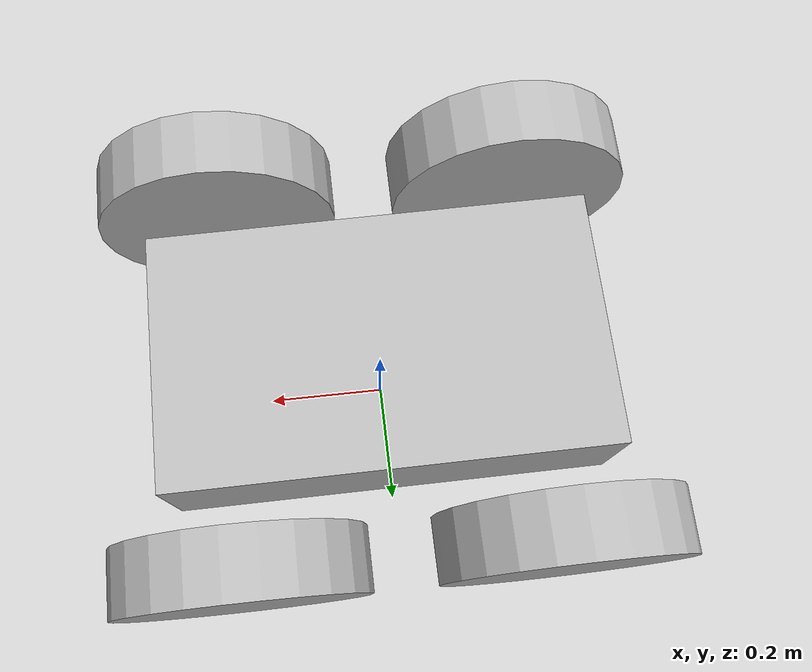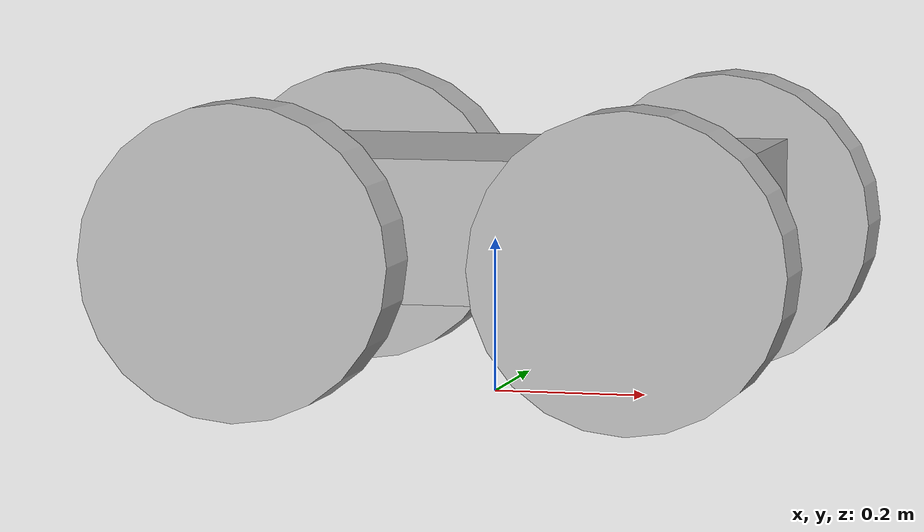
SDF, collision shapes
<?xml version='1.0'?>
<sdf version='1.4'>
  <model name="Saturne">
	<static>false</static>

	<link name='chassis'>
        <pose>0 0 0.2275 0 0 0</pose>

        <collision name='collision'>
          <geometry>
            <box>
              <size>.70 .405 .185</size>
            </box>
          </geometry>
        </collision>

        <visual name='visual'>
          	<pose> 0.35 0 0 0 0 0</pose>

          	<geometry>
	          	<mesh>
	          		<scale>1 1 1</scale>
	        	</mesh>
          	</geometry>
        </visual>
	</link>

	<link name="front_left_wheel">
        <pose>0.25 -0.3175 0.2 0 1.5707 1.5707</pose>
        <collision name="collision">
          <geometry>
            <cylinder>
              <radius>.2</radius>
              <length>.105</length>
            </cylinder>
          </geometry>
        </collision>

        <visual name='visual'>
	        <pose> 0 0 0 1.5707 0 0</pose>

          	<geometry>
	          	<mesh>
	          		<uri>model://robot_saturne/meshes/first_wheel.dae</uri>
	          		<scale>0.1 0.1 0.1</scale>
	        	</mesh>
          	</geometry>
        </visual>
	</link>

	<link name="rear_left_wheel">
        <pose>-0.25 -0.3175 0.2 0 1.5707 1.5707</pose>
        <collision name="collision">
          <geometry>
            <cylinder>
              <radius>.2</radius>
              <length>.105</length>
            </cylinder>
          </geometry>
        </collision>

        <visual name='visual'>
	        <pose>0 0 0 1.5707 0 0</pose>

          	<geometry>
	          	<mesh>
	          		<uri>model://robot_saturne/meshes/first_wheel.dae</uri>
	          		<scale>0.1 0.1 0.1</scale>
	        	</mesh>
          	</geometry>
        </visual>
	</link>

	<link name="front_right_wheel">
        <pose>0.25 0.3175 0.2 0 1.5707 1.5707</pose>
        <collision name="collision">
          <geometry>
            <cylinder>
              <radius>.2</radius>
              <length>.105</length>
            </cylinder>
          </geometry>
        </collision>

        <visual name='visual'>
	        <pose>0 0 0 1.5707 0 0</pose>

          	<geometry>
	          	<mesh>
	          		<uri>model://robot_saturne/meshes/first_wheel.dae</uri>
	          		<scale>0.1 0.1 0.1</scale>
	        	</mesh>
          	</geometry>
        </visual>
	</link>

	<link name="rear_right_wheel">
        <pose>-0.25 0.3175 0.2 0 1.5707 1.5707</pose>
        <collision name="collision">
          <geometry>
            <cylinder>
              <radius>.2</radius>
              <length>.105</length>
            </cylinder>
          </geometry>
        </collision>

        <visual name='visual'>
	        <pose>0 0 0 1.5707 0 0</pose>

          	<geometry>
	          	<mesh>
	          		<uri>model://robot_saturne/meshes/first_wheel.dae</uri>
	          		<scale>0.1 0.1 0.1</scale>
	        	</mesh>
          	</geometry>
        </visual>
	</link>

	<joint type="revolute" name="front_left_wheel_hinge">
        <pose>0 0 0 0 0 0</pose>
        <child>front_left_wheel</child>
        <parent>chassis</parent>
        <axis>
          	<xyz>0 1 0</xyz>
        </axis>
      </joint>

    <joint type="revolute" name="rear_left_wheel_hinge">
        <pose>0 0 0 0 0 0</pose>
        <child>rear_left_wheel</child>
        <parent>chassis</parent>
        <axis>
          	<xyz>0 1 0</xyz>
        </axis>
	</joint>

    <joint type="revolute" name="front_right_wheel_hinge">
        <pose>0 0 0 0 0 0</pose>
        <child>front_right_wheel</child>
        <parent>chassis</parent>
        <axis>
          	<xyz>0 1 0</xyz>
        </axis>
	</joint>

    <joint type="revolute" name="rear_right_wheel_hinge">
        <pose>0 0 0 0 0 0</pose>
        <child>rear_right_wheel</child>
        <parent>chassis</parent>
        <axis>
          	<xyz>0 1 0</xyz>
        </axis>
	</joint>
  </model>
</sdf>
